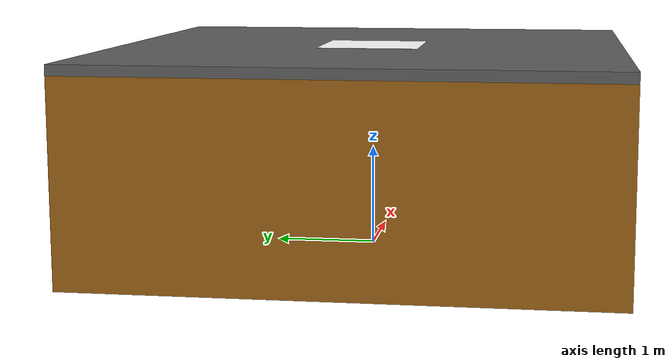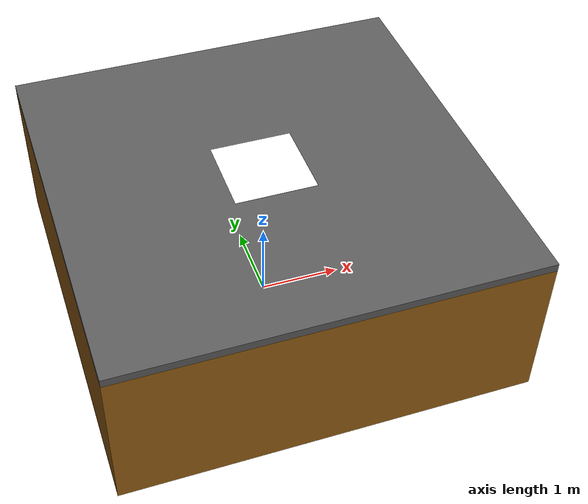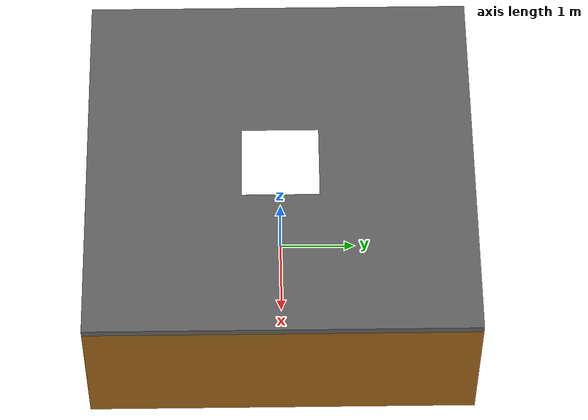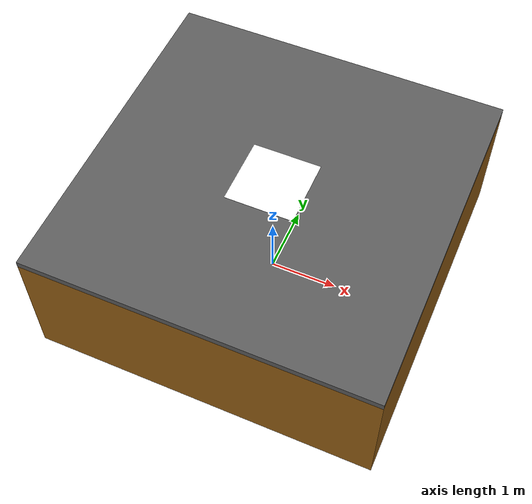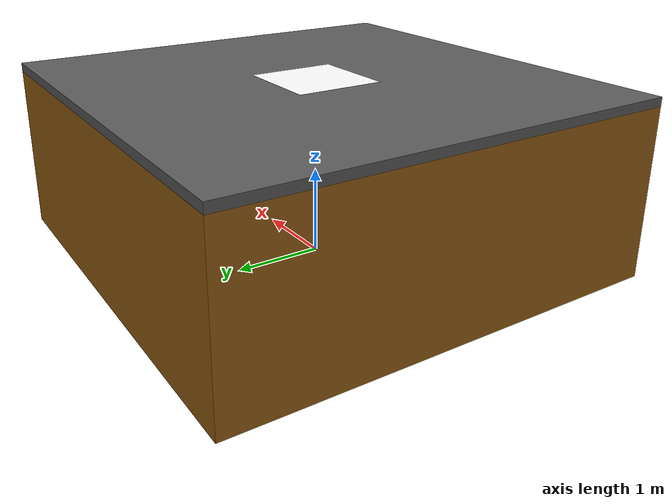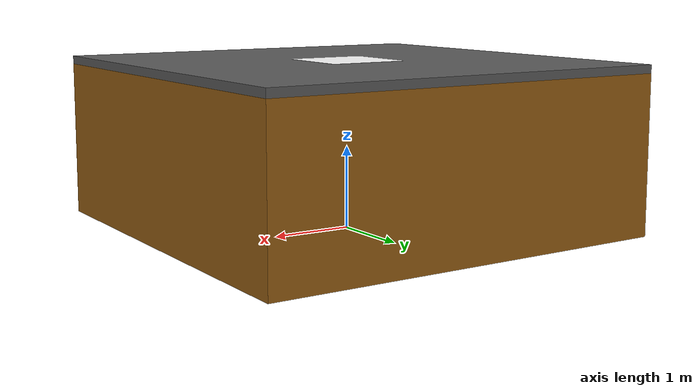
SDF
<?xml version="1.0" encoding="UTF-8"?>
<sdf version="1.9">
  <model name="flat_platform">
    <link name="platform_link">
      <visual name="body_visual">
        <pose>0 0 -1 0 0 0</pose>
        <geometry><box><size>5 5 1.9</size></box></geometry>
        <material>
          <ambient>0.55 0.32 0.05 1</ambient>
          <diffuse>0.60 0.38 0.08 1</diffuse>
          <specular>0.20 0.20 0.20 1</specular>
        </material>
      </visual>
      <collision name="body_collision">
        <pose>0 0 -1 0 0 0</pose>
        <geometry><box><size>5 5 1.9</size></box></geometry>
        <surface>
          <friction><ode><mu>0.8</mu><mu2>0.8</mu2></ode></friction>
          <contact><ode><kp>100000</kp><kd>10</kd><max_vel>0.1</max_vel></ode></contact>
        </surface>
      </collision>

      <visual name="platform_visual">
        <geometry><box><size>5 5 0.1</size></box></geometry>
        <material>
          <ambient>0.30 0.30 0.30 1</ambient>
          <diffuse>0.36 0.36 0.36 1</diffuse>
          <specular>0.10 0.10 0.10 1</specular>
        </material>
      </visual>
      <collision name="platform_collision">
        <geometry><box><size>5 5 0.1</size></box></geometry>
      </collision>
      <visual name="aruco_visual">
        <pose>0 0 0.051 0 0 0</pose>
        <geometry><plane><normal>0 0 1</normal><size>1 1</size></plane></geometry>
        <material>
          <ambient>1 1 1 1</ambient><diffuse>1 1 1 1</diffuse>
          <specular>0 0 0 1</specular>
          <pbr><metal>
            <albedo_map>model://aruco_marker_0/materials/textures/aruco_0.png</albedo_map>
            <metalness>0.0</metalness><roughness>1.0</roughness>
          </metal></pbr>
        </material>
      </visual>

      <!-- seo keeps the link origin 2 m above the body bottom convention. -->
      <pose>0 0 2 0 0 0</pose>
      <inertial>
        <mass>10000</mass>
        <inertia>
          <ixx>10000</ixx><iyy>10000</iyy><izz>10000</izz>
          <ixy>0</ixy><ixz>0</ixz><iyz>0</iyz>
        </inertia>
      </inertial>
      <sensor name="navsat_sensor" type="navsat">
        <always_on>1</always_on><update_rate>30</update_rate>
      </sensor>
    </link>
    <plugin filename="gz-sim-velocity-control-system"
            name="gz::sim::systems::VelocityControl">
      <topic>/model/flat_platform/cmd_vel</topic>
    </plugin>
  </model>
</sdf>
